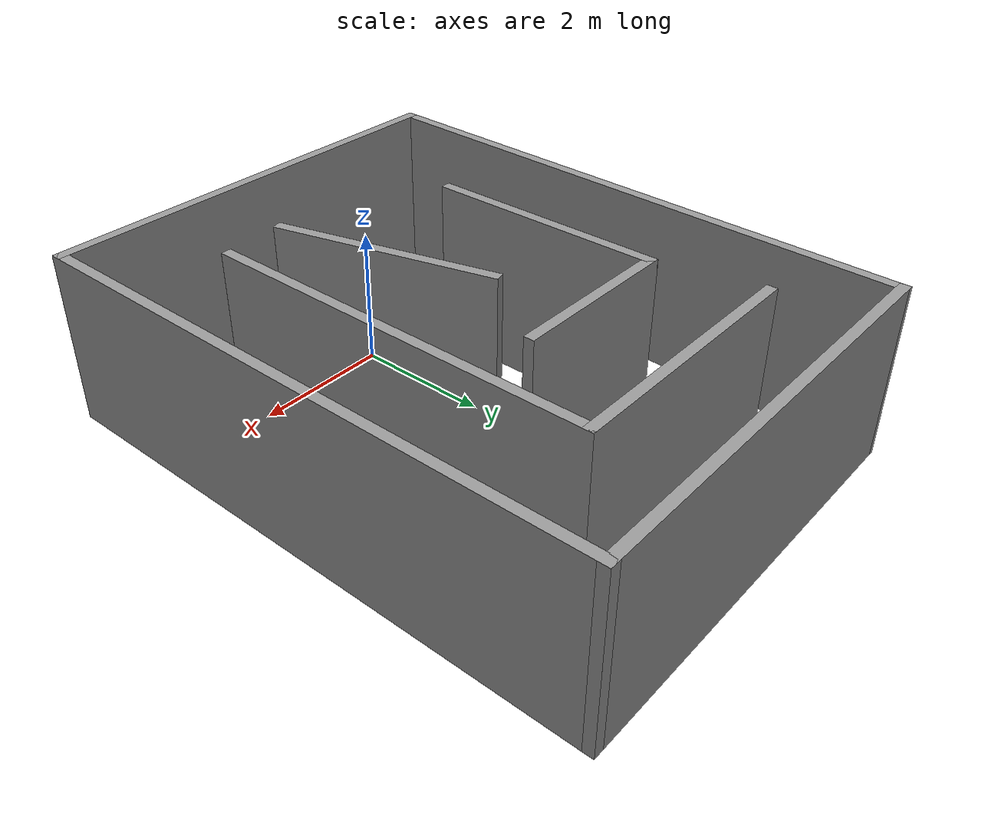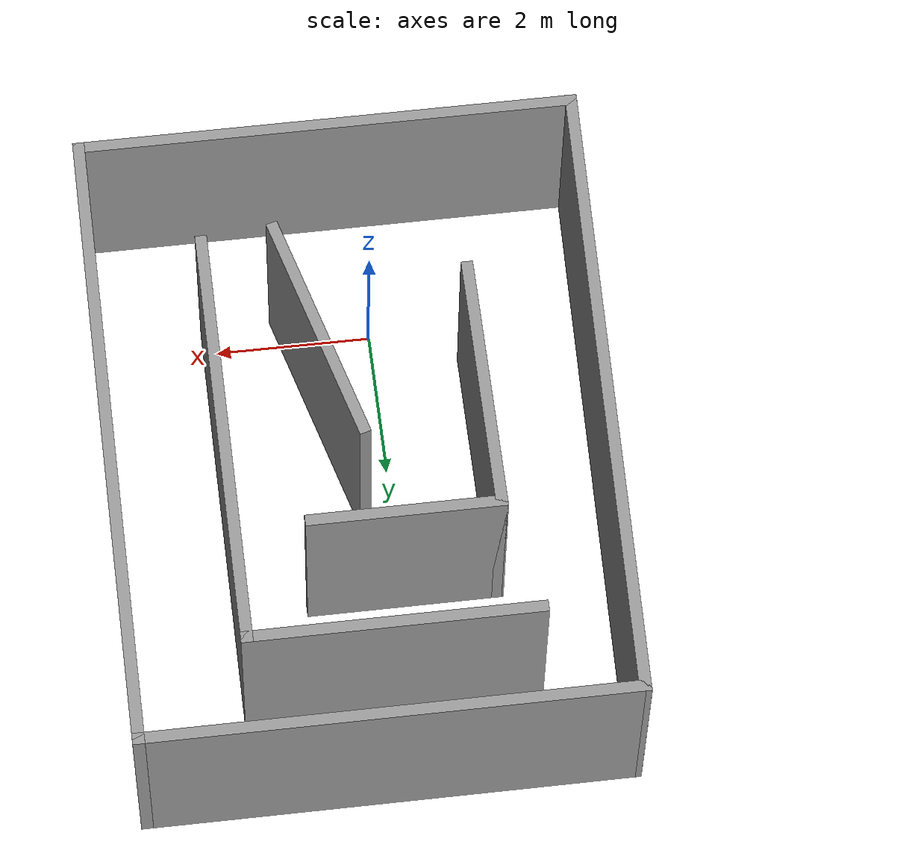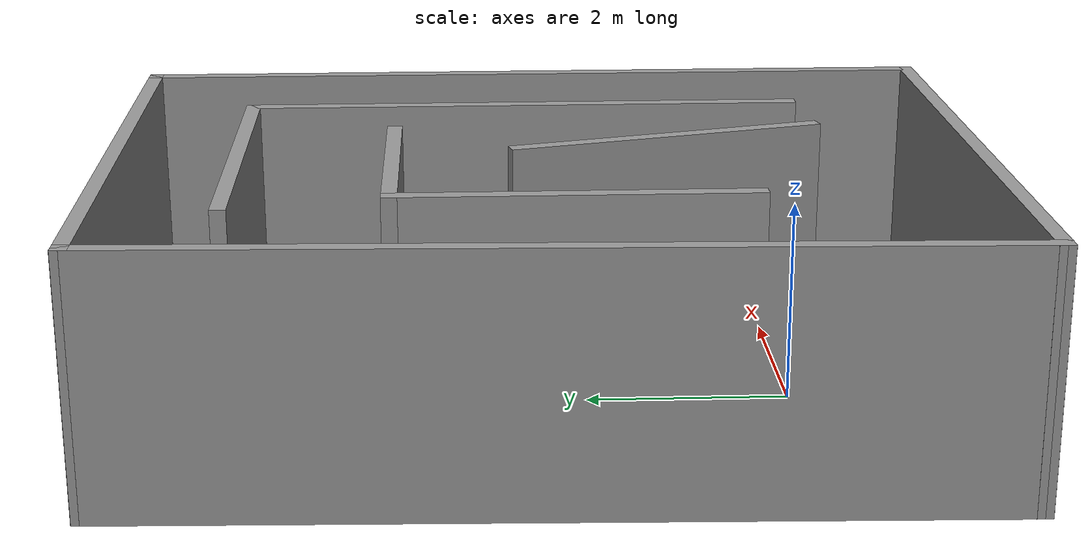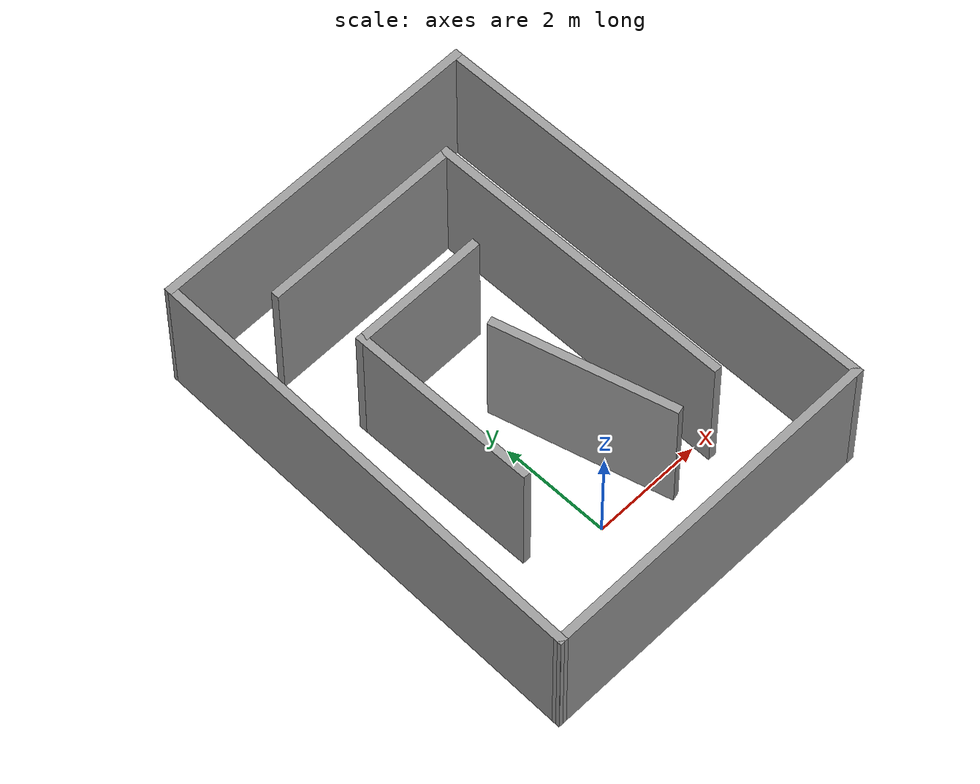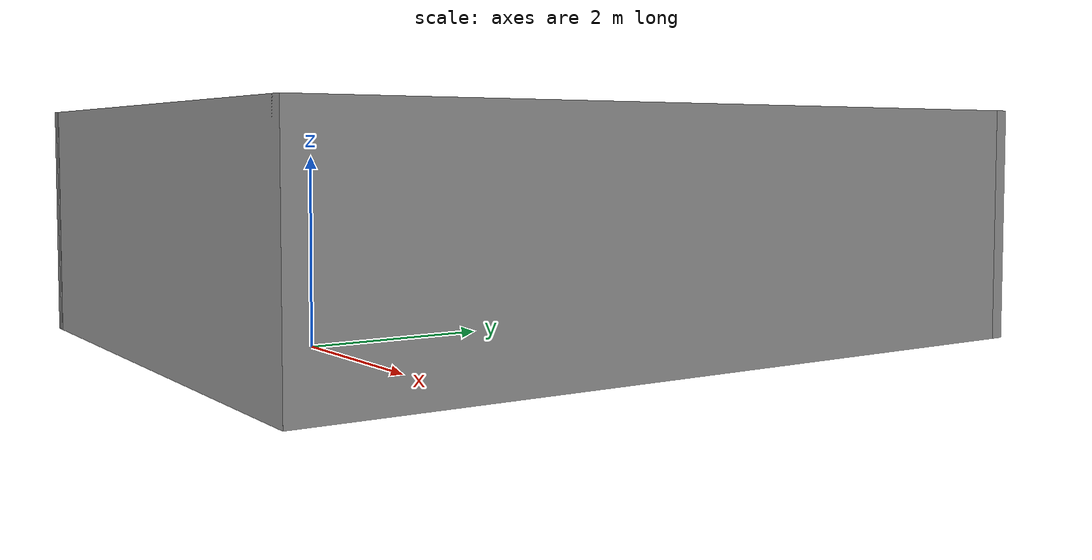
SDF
<?xml version='1.0'?>
<sdf version='1.6'>
  <model name='maze2'>
    <pose frame=''>0.353894 2.375 0 0 -0 0</pose>
    <link name='Wall_0'>
      <collision name='Wall_0_Collision'>
        <geometry>
          <box>
            <size>6.5 0.15 2.5</size>
          </box>
        </geometry>
        <pose frame=''>0 0 1.25 0 -0 0</pose>
      </collision>
      <visual name='Wall_0_Visual'>
        <pose frame=''>0 0 1.25 0 -0 0</pose>
        <geometry>
          <box>
            <size>6.5 0.15 2.5</size>
          </box>
        </geometry>
        <material>
          <script>
            <uri>file://media/materials/scripts/gazebo.material</uri>
            <name>Gazebo/Grey</name>
          </script>
          <ambient>1 1 1 1</ambient>
        </material>
        <meta>
          <layer>0</layer>
        </meta>
      </visual>
      <pose frame=''>0.001106 -4.175 0 0 -0 0</pose>
    </link>
    <link name='Wall_1'>
      <collision name='Wall_1_Collision'>
        <geometry>
          <box>
            <size>8.5 0.15 2.5</size>
          </box>
        </geometry>
        <pose frame=''>0 0 1.25 0 -0 0</pose>
      </collision>
      <visual name='Wall_1_Visual'>
        <pose frame=''>0 0 1.25 0 -0 0</pose>
        <geometry>
          <box>
            <size>8.5 0.15 2.5</size>
          </box>
        </geometry>
        <material>
          <script>
            <uri>file://media/materials/scripts/gazebo.material</uri>
            <name>Gazebo/Grey</name>
          </script>
          <ambient>1 1 1 1</ambient>
        </material>
        <meta>
          <layer>0</layer>
        </meta>
      </visual>
      <pose frame=''>3.17611 0 0 0 -0 1.5708</pose>
    </link>
    <link name='Wall_10'>
      <collision name='Wall_10_Collision'>
        <geometry>
          <box>
            <size>3.5 0.15 2.5</size>
          </box>
        </geometry>
        <pose frame=''>0 0 1.25 0 -0 0</pose>
      </collision>
      <visual name='Wall_10_Visual'>
        <pose frame=''>0 0 1.25 0 -0 0</pose>
        <geometry>
          <box>
            <size>3.5 0.15 2.5</size>
          </box>
        </geometry>
        <material>
          <script>
            <uri>file://media/materials/scripts/gazebo.material</uri>
            <name>Gazebo/Grey</name>
          </script>
          <ambient>1 1 1 1</ambient>
        </material>
        <meta>
          <layer>0</layer>
        </meta>
      </visual>
      <pose frame=''>-1.53927 -0.180697 0 0 -0 -1.5708</pose>
    </link>
    <link name='Wall_12'>
      <collision name='Wall_12_Collision'>
        <geometry>
          <box>
            <size>3.25 0.15 2.5</size>
          </box>
        </geometry>
        <pose frame=''>0 0 1.25 0 -0 0</pose>
      </collision>
      <visual name='Wall_12_Visual'>
        <pose frame=''>0 0 1.25 0 -0 0</pose>
        <geometry>
          <box>
            <size>3.25 0.15 2.5</size>
          </box>
        </geometry>
        <material>
          <script>
            <uri>file://media/materials/scripts/gazebo.material</uri>
            <name>Gazebo/Grey</name>
          </script>
          <ambient>1 1 1 1</ambient>
        </material>
        <meta>
          <layer>0</layer>
        </meta>
      </visual>
      <pose frame=''>0.427467 -1.2097 0 0 -0 -1.309</pose>
    </link>
    <link name='Wall_2'>
      <collision name='Wall_2_Collision'>
        <geometry>
          <box>
            <size>6.25 0.15 2.5</size>
          </box>
        </geometry>
        <pose frame=''>0 0 1.25 0 -0 0</pose>
      </collision>
      <visual name='Wall_2_Visual'>
        <pose frame=''>0 0 1.25 0 -0 0</pose>
        <geometry>
          <box>
            <size>6.25 0.15 2.5</size>
          </box>
        </geometry>
        <material>
          <script>
            <uri>file://media/materials/scripts/gazebo.material</uri>
            <name>Gazebo/Grey</name>
          </script>
          <ambient>1 1 1 1</ambient>
        </material>
        <meta>
          <layer>0</layer>
        </meta>
      </visual>
      <pose frame=''>0.126106 4.175 0 0 -0 3.14159</pose>
    </link>
    <link name='Wall_4'>
      <collision name='Wall_4_Collision'>
        <geometry>
          <box>
            <size>8.50374 0.15 2.5</size>
          </box>
        </geometry>
        <pose frame=''>0 0 1.25 0 -0 0</pose>
      </collision>
      <visual name='Wall_4_Visual'>
        <pose frame=''>0 0 1.25 0 -0 0</pose>
        <geometry>
          <box>
            <size>8.50374 0.15 2.5</size>
          </box>
        </geometry>
        <material>
          <script>
            <uri>file://media/materials/scripts/gazebo.material</uri>
            <name>Gazebo/Grey</name>
          </script>
          <ambient>1 1 1 1</ambient>
        </material>
        <meta>
          <layer>0</layer>
        </meta>
      </visual>
      <pose frame=''>-3.04889 0 0 0 -0 -1.60073</pose>
    </link>
    <link name='Wall_6'>
      <collision name='Wall_6_Collision'>
        <geometry>
          <box>
            <size>3.75 0.15 2.5</size>
          </box>
        </geometry>
        <pose frame=''>0 0 1.25 0 -0 0</pose>
      </collision>
      <visual name='Wall_6_Visual'>
        <pose frame=''>0 0 1.25 0 -0 0</pose>
        <geometry>
          <box>
            <size>3.75 0.15 2.5</size>
          </box>
        </geometry>
        <material>
          <script>
            <uri>file://media/materials/scripts/gazebo.material</uri>
            <name>Gazebo/Grey</name>
          </script>
          <ambient>1 1 1 1</ambient>
        </material>
        <meta>
          <layer>0</layer>
        </meta>
      </visual>
      <pose frame=''>-0.044265 2.98271 0 0 -0 0</pose>
    </link>
    <link name='Wall_7'>
      <collision name='Wall_7_Collision'>
        <geometry>
          <box>
            <size>5.75 0.15 2.5</size>
          </box>
        </geometry>
        <pose frame=''>0 0 1.25 0 -0 0</pose>
      </collision>
      <visual name='Wall_7_Visual'>
        <pose frame=''>0 0 1.25 0 -0 0</pose>
        <geometry>
          <box>
            <size>5.75 0.15 2.5</size>
          </box>
        </geometry>
        <material>
          <script>
            <uri>file://media/materials/scripts/gazebo.material</uri>
            <name>Gazebo/Grey</name>
          </script>
          <ambient>1 1 1 1</ambient>
        </material>
        <meta>
          <layer>0</layer>
        </meta>
      </visual>
      <pose frame=''>1.75574 0.182707 0 0 -0 -1.5708</pose>
    </link>
    <link name='Wall_9'>
      <collision name='Wall_9_Collision'>
        <geometry>
          <box>
            <size>2.5 0.15 2.5</size>
          </box>
        </geometry>
        <pose frame=''>0 0 1.25 0 -0 0</pose>
      </collision>
      <visual name='Wall_9_Visual'>
        <pose frame=''>0 0 1.25 0 -0 0</pose>
        <geometry>
          <box>
            <size>2.5 0.15 2.5</size>
          </box>
        </geometry>
        <material>
          <script>
            <uri>file://media/materials/scripts/gazebo.material</uri>
            <name>Gazebo/Grey</name>
          </script>
          <ambient>1 1 1 1</ambient>
        </material>
        <meta>
          <layer>0</layer>
        </meta>
      </visual>
      <pose frame=''>-0.364273 1.4943 0 0 -0 3.14159</pose>
    </link>
    <static>1</static>
  </model>
</sdf>
